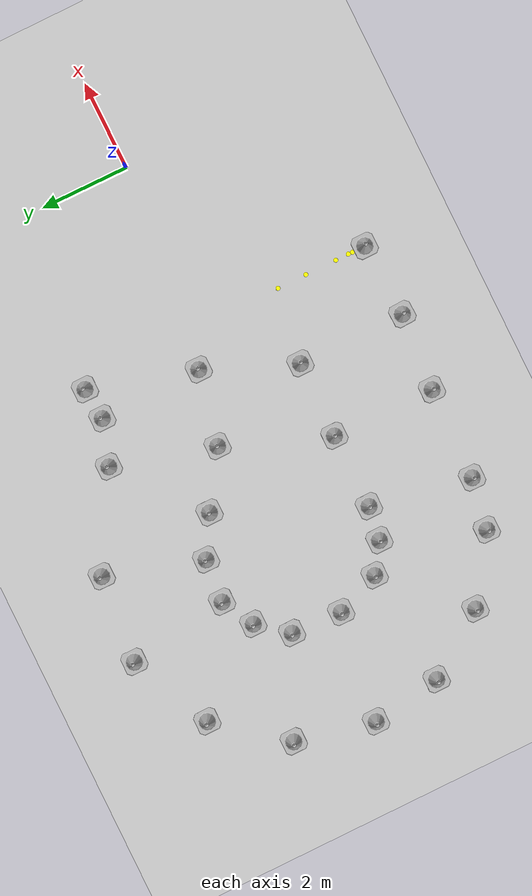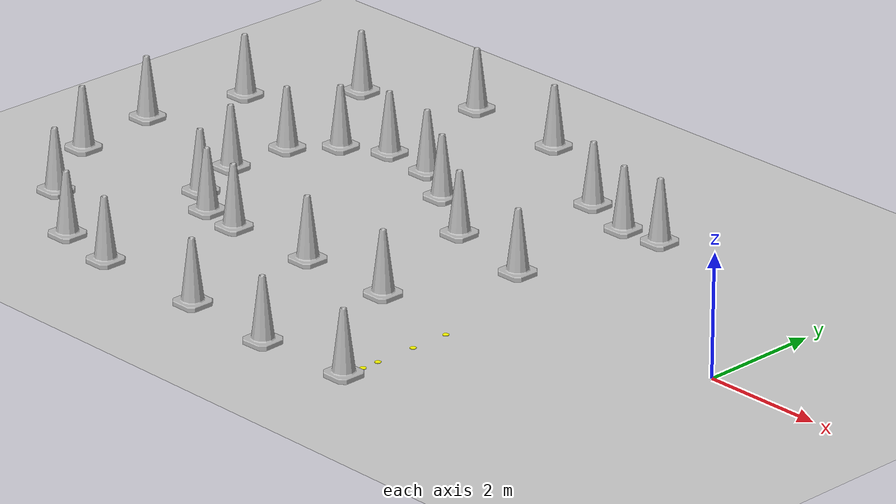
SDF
<sdf version="1.6">
 <world name="default">
  <model name="ground_plane">
   <static>1</static>
   <link name="link">
    <collision name="collision">
     <geometry><plane><normal>0 0 1</normal><size>100 100</size></plane></geometry>
     <surface><friction><ode><mu>100</mu><mu2>50</mu2></ode></friction></surface>
    </collision>
    <visual name="visual">
     <cast_shadows>0</cast_shadows>
     <geometry><plane><normal>0 0 1</normal><size>100 100</size></plane></geometry>
     <material>
      <script><uri>file://media/materials/scripts/gazebo.material</uri><name>Gazebo/Grey</name></script>
     </material>
    </visual>
   </link>
  </model>
  <model name="red_model_8">
   <link name="link">
    <collision name="collision">
     <geometry>
      <mesh><scale>10 10 10</scale><uri>model://construction_cone_red/meshes/construction_cone.dae</uri></mesh>
     </geometry>
    </collision>
    <visual name="visual">
     <geometry>
      <mesh><scale>10 10 10</scale><uri>model://construction_cone_red/meshes/construction_cone.dae</uri></mesh>
     </geometry>
    </visual>
    <inertial>
     <inertia><ixx>1</ixx><ixy>0</ixy><ixz>0</ixz><iyy>1</iyy><iyz>0</iyz><izz>1</izz></inertia>
     <mass>1</mass>
    </inertial>
   </link>
   <pose>-5.4 -1.5 -0 0 -1e-06 0</pose>
  </model>
  <model name="red_model_9">
   <link name="link">
    <collision name="collision">
     <geometry>
      <mesh><scale>10 10 10</scale><uri>model://construction_cone_red/meshes/construction_cone.dae</uri></mesh>
     </geometry>
    </collision>
    <visual name="visual">
     <geometry>
      <mesh><scale>10 10 10</scale><uri>model://construction_cone_red/meshes/construction_cone.dae</uri></mesh>
     </geometry>
    </visual>
    <inertial>
     <inertia><ixx>1</ixx><ixy>0</ixy><ixz>0</ixz><iyy>1</iyy><iyz>0</iyz><izz>1</izz></inertia>
     <mass>1</mass>
    </inertial>
   </link>
   <pose>-7.11 -1.47 -0 0 -0 0</pose>
  </model>
  <model name="red_model_10">
   <link name="link">
    <collision name="collision">
     <geometry>
      <mesh><scale>10 10 10</scale><uri>model://construction_cone_red/meshes/construction_cone.dae</uri></mesh>
     </geometry>
    </collision>
    <visual name="visual">
     <geometry>
      <mesh><scale>10 10 10</scale><uri>model://construction_cone_red/meshes/construction_cone.dae</uri></mesh>
     </geometry>
    </visual>
    <inertial>
     <inertia><ixx>1</ixx><ixy>0</ixy><ixz>0</ixz><iyy>1</iyy><iyz>0</iyz><izz>1</izz></inertia>
     <mass>1</mass>
    </inertial>
   </link>
   <pose>-8.79 -1.47 -9e-06 0 -0 0</pose>
  </model>
  <model name="red_model_11">
   <link name="link">
    <collision name="collision">
     <geometry>
      <mesh><scale>10 10 10</scale><uri>model://construction_cone_red/meshes/construction_cone.dae</uri></mesh>
     </geometry>
    </collision>
    <visual name="visual">
     <geometry>
      <mesh><scale>10 10 10</scale><uri>model://construction_cone_red/meshes/construction_cone.dae</uri></mesh>
     </geometry>
    </visual>
    <inertial>
     <inertia><ixx>1</ixx><ixy>0</ixy><ixz>0</ixz><iyy>1</iyy><iyz>0</iyz><izz>1</izz></inertia>
     <mass>1</mass>
    </inertial>
   </link>
   <pose>-9.54 -1.35 -0 0 -0 0</pose>
  </model>
  <model name="red_model_12">
   <link name="link">
    <collision name="collision">
     <geometry>
      <mesh><scale>10 10 10</scale><uri>model://construction_cone_red/meshes/construction_cone.dae</uri></mesh>
     </geometry>
    </collision>
    <visual name="visual">
     <geometry>
      <mesh><scale>10 10 10</scale><uri>model://construction_cone_red/meshes/construction_cone.dae</uri></mesh>
     </geometry>
    </visual>
    <inertial>
     <inertia><ixx>1</ixx><ixy>0</ixy><ixz>0</ixz><iyy>1</iyy><iyz>0</iyz><izz>1</izz></inertia>
     <mass>1</mass>
    </inertial>
   </link>
   <pose>-10.17 -0.93 -0 0 -1e-06 0</pose>
  </model>
  <model name="red_model_14">
   <link name="link">
    <collision name="collision">
     <geometry>
      <mesh><scale>10 10 10</scale><uri>model://construction_cone_red/meshes/construction_cone.dae</uri></mesh>
     </geometry>
    </collision>
    <visual name="visual">
     <geometry>
      <mesh><scale>10 10 10</scale><uri>model://construction_cone_red/meshes/construction_cone.dae</uri></mesh>
     </geometry>
    </visual>
    <inertial>
     <inertia><ixx>1</ixx><ixy>0</ixy><ixz>0</ixz><iyy>1</iyy><iyz>0</iyz><izz>1</izz></inertia>
     <mass>1</mass>
    </inertial>
   </link>
   <pose>-10.56 0.06 -0 0 -1e-06 0</pose>
  </model>
  <model name="red_model_15">
   <link name="link">
    <collision name="collision">
     <geometry>
      <mesh><scale>10 10 10</scale><uri>model://construction_cone_red/meshes/construction_cone.dae</uri></mesh>
     </geometry>
    </collision>
    <visual name="visual">
     <geometry>
      <mesh><scale>10 10 10</scale><uri>model://construction_cone_red/meshes/construction_cone.dae</uri></mesh>
     </geometry>
    </visual>
    <inertial>
     <inertia><ixx>1</ixx><ixy>0</ixy><ixz>0</ixz><iyy>1</iyy><iyz>0</iyz><izz>1</izz></inertia>
     <mass>1</mass>
    </inertial>
   </link>
   <pose>-4.56 0.51 -0 0 -0 0</pose>
  </model>
  <model name="red_model_19">
   <link name="link">
    <collision name="collision">
     <geometry>
      <mesh><scale>10 10 10</scale><uri>model://construction_cone_red/meshes/construction_cone.dae</uri></mesh>
     </geometry>
    </collision>
    <visual name="visual">
     <geometry>
      <mesh><scale>10 10 10</scale><uri>model://construction_cone_red/meshes/construction_cone.dae</uri></mesh>
     </geometry>
    </visual>
    <inertial>
     <inertia><ixx>1</ixx><ixy>0</ixy><ixz>0</ixz><iyy>1</iyy><iyz>0</iyz><izz>1</izz></inertia>
     <mass>1</mass>
    </inertial>
   </link>
   <pose>-6.21 0.87 -0 0 -0 0</pose>
  </model>
  <model name="red_model_20">
   <link name="link">
    <collision name="collision">
     <geometry>
      <mesh><scale>10 10 10</scale><uri>model://construction_cone_red/meshes/construction_cone.dae</uri></mesh>
     </geometry>
    </collision>
    <visual name="visual">
     <geometry>
      <mesh><scale>10 10 10</scale><uri>model://construction_cone_red/meshes/construction_cone.dae</uri></mesh>
     </geometry>
    </visual>
    <inertial>
     <inertia><ixx>1</ixx><ixy>0</ixy><ixz>0</ixz><iyy>1</iyy><iyz>0</iyz><izz>1</izz></inertia>
     <mass>1</mass>
    </inertial>
   </link>
   <pose>-10.5 1.2 -0 0 -0 0</pose>
  </model>
  <model name="red_model_22">
   <link name="link">
    <collision name="collision">
     <geometry>
      <mesh><scale>10 10 10</scale><uri>model://construction_cone_red/meshes/construction_cone.dae</uri></mesh>
     </geometry>
    </collision>
    <visual name="visual">
     <geometry>
      <mesh><scale>10 10 10</scale><uri>model://construction_cone_red/meshes/construction_cone.dae</uri></mesh>
     </geometry>
    </visual>
    <inertial>
     <inertia><ixx>1</ixx><ixy>0</ixy><ixz>0</ixz><iyy>1</iyy><iyz>0</iyz><izz>1</izz></inertia>
     <mass>1</mass>
    </inertial>
   </link>
   <pose>-7.41 1.65 -0 0 -1e-06 0</pose>
  </model>
  <model name="red_model_24">
   <link name="link">
    <collision name="collision">
     <geometry>
      <mesh><scale>10 10 10</scale><uri>model://construction_cone_red/meshes/construction_cone.dae</uri></mesh>
     </geometry>
    </collision>
    <visual name="visual">
     <geometry>
      <mesh><scale>10 10 10</scale><uri>model://construction_cone_red/meshes/construction_cone.dae</uri></mesh>
     </geometry>
    </visual>
    <inertial>
     <inertia><ixx>1</ixx><ixy>0</ixy><ixz>0</ixz><iyy>1</iyy><iyz>0</iyz><izz>1</izz></inertia>
     <mass>1</mass>
    </inertial>
   </link>
   <pose>-9.96 1.86 -0 0 -1e-06 0</pose>
  </model>
  <model name="red_model_28">
   <link name="link">
    <collision name="collision">
     <geometry>
      <mesh><scale>10 10 10</scale><uri>model://construction_cone_red/meshes/construction_cone.dae</uri></mesh>
     </geometry>
    </collision>
    <visual name="visual">
     <geometry>
      <mesh><scale>10 10 10</scale><uri>model://construction_cone_red/meshes/construction_cone.dae</uri></mesh>
     </geometry>
    </visual>
    <inertial>
     <inertia><ixx>1</ixx><ixy>0</ixy><ixz>0</ixz><iyy>1</iyy><iyz>0</iyz><izz>1</izz></inertia>
     <mass>1</mass>
    </inertial>
   </link>
   <pose>-8.28 2.16 -0 0 -1e-06 0</pose>
  </model>
  <model name="red_model_29">
   <link name="link">
    <collision name="collision">
     <geometry>
      <mesh><scale>10 10 10</scale><uri>model://construction_cone_red/meshes/construction_cone.dae</uri></mesh>
     </geometry>
    </collision>
    <visual name="visual">
     <geometry>
      <mesh><scale>10 10 10</scale><uri>model://construction_cone_red/meshes/construction_cone.dae</uri></mesh>
     </geometry>
    </visual>
    <inertial>
     <inertia><ixx>1</ixx><ixy>0</ixy><ixz>0</ixz><iyy>1</iyy><iyz>0</iyz><izz>1</izz></inertia>
     <mass>1</mass>
    </inertial>
   </link>
   <pose>-9.24 2.25 -0 0 -0 0</pose>
  </model>
  <model name="blue_model_2">
   <link name="link">
    <collision name="collision">
     <geometry>
      <mesh><scale>10 10 10</scale><uri>model://construction_cone_blue/meshes/construction_cone.dae</uri></mesh>
     </geometry>
    </collision>
    <visual name="visual">
     <geometry>
      <mesh><scale>10 10 10</scale><uri>model://construction_cone_blue/meshes/construction_cone.dae</uri></mesh>
     </geometry>
    </visual>
    <inertial>
     <inertia><ixx>1</ixx><ixy>0</ixy><ixz>0</ixz><iyy>1</iyy><iyz>0</iyz><izz>1</izz></inertia>
     <mass>1</mass>
    </inertial>
   </link>
   <pose>-3.74995 -3.84019 0.004992 -0 -1e-06 -0.00015</pose>
  </model>
  <model name="blue_model_5">
   <link name="link">
    <collision name="collision">
     <geometry>
      <mesh><scale>10 10 10</scale><uri>model://construction_cone_blue/meshes/construction_cone.dae</uri></mesh>
     </geometry>
    </collision>
    <visual name="visual">
     <geometry>
      <mesh><scale>10 10 10</scale><uri>model://construction_cone_blue/meshes/construction_cone.dae</uri></mesh>
     </geometry>
    </visual>
    <inertial>
     <inertia><ixx>1</ixx><ixy>0</ixy><ixz>0</ixz><iyy>1</iyy><iyz>0</iyz><izz>1</izz></inertia>
     <mass>1</mass>
    </inertial>
   </link>
   <pose>-5.41428 -3.92101 -0 0 -1e-06 -3.10196</pose>
  </model>
  <model name="blue_model_6">
   <link name="link">
    <collision name="collision">
     <geometry>
      <mesh><scale>10 10 10</scale><uri>model://construction_cone_blue/meshes/construction_cone.dae</uri></mesh>
     </geometry>
    </collision>
    <visual name="visual">
     <geometry>
      <mesh><scale>10 10 10</scale><uri>model://construction_cone_blue/meshes/construction_cone.dae</uri></mesh>
     </geometry>
    </visual>
    <inertial>
     <inertia><ixx>1</ixx><ixy>0</ixy><ixz>0</ixz><iyy>1</iyy><iyz>0</iyz><izz>1</izz></inertia>
     <mass>1</mass>
    </inertial>
   </link>
   <pose>-7.14 -3.78 -0 0 -1e-06 0</pose>
  </model>
  <model name="blue_model_7">
   <link name="link">
    <collision name="collision">
     <geometry>
      <mesh><scale>10 10 10</scale><uri>model://construction_cone_blue/meshes/construction_cone.dae</uri></mesh>
     </geometry>
    </collision>
    <visual name="visual">
     <geometry>
      <mesh><scale>10 10 10</scale><uri>model://construction_cone_blue/meshes/construction_cone.dae</uri></mesh>
     </geometry>
    </visual>
    <inertial>
     <inertia><ixx>1</ixx><ixy>0</ixy><ixz>0</ixz><iyy>1</iyy><iyz>0</iyz><izz>1</izz></inertia>
     <mass>1</mass>
    </inertial>
   </link>
   <pose>-9.21 -3.72 -0 0 -1e-06 0</pose>
  </model>
  <model name="blue_model_8">
   <link name="link">
    <collision name="collision">
     <geometry>
      <mesh><scale>10 10 10</scale><uri>model://construction_cone_blue/meshes/construction_cone.dae</uri></mesh>
     </geometry>
    </collision>
    <visual name="visual">
     <geometry>
      <mesh><scale>10 10 10</scale><uri>model://construction_cone_blue/meshes/construction_cone.dae</uri></mesh>
     </geometry>
    </visual>
    <inertial>
     <inertia><ixx>1</ixx><ixy>0</ixy><ixz>0</ixz><iyy>1</iyy><iyz>0</iyz><izz>1</izz></inertia>
     <mass>1</mass>
    </inertial>
   </link>
   <pose>-10.35 -3.51 -0 0 -1e-06 0</pose>
  </model>
  <model name="blue_model_11">
   <link name="link">
    <collision name="collision">
     <geometry>
      <mesh><scale>10 10 10</scale><uri>model://construction_cone_blue/meshes/construction_cone.dae</uri></mesh>
     </geometry>
    </collision>
    <visual name="visual">
     <geometry>
      <mesh><scale>10 10 10</scale><uri>model://construction_cone_blue/meshes/construction_cone.dae</uri></mesh>
     </geometry>
    </visual>
    <inertial>
     <inertia><ixx>1</ixx><ixy>0</ixy><ixz>0</ixz><iyy>1</iyy><iyz>0</iyz><izz>1</izz></inertia>
     <mass>1</mass>
    </inertial>
   </link>
   <pose>-11.76 -2.55 -0 0 -1e-06 0</pose>
  </model>
  <model name="blue_model_13">
   <link name="link">
    <collision name="collision">
     <geometry>
      <mesh><scale>10 10 10</scale><uri>model://construction_cone_blue/meshes/construction_cone.dae</uri></mesh>
     </geometry>
    </collision>
    <visual name="visual">
     <geometry>
      <mesh><scale>10 10 10</scale><uri>model://construction_cone_blue/meshes/construction_cone.dae</uri></mesh>
     </geometry>
    </visual>
    <inertial>
     <inertia><ixx>1</ixx><ixy>0</ixy><ixz>0</ixz><iyy>1</iyy><iyz>0</iyz><izz>1</izz></inertia>
     <mass>1</mass>
    </inertial>
   </link>
   <pose>-12.75 -1.14 -0 0 -0 0</pose>
  </model>
  <model name="blue_model_14">
   <link name="link">
    <collision name="collision">
     <geometry>
      <mesh><scale>10 10 10</scale><uri>model://construction_cone_blue/meshes/construction_cone.dae</uri></mesh>
     </geometry>
    </collision>
    <visual name="visual">
     <geometry>
      <mesh><scale>10 10 10</scale><uri>model://construction_cone_blue/meshes/construction_cone.dae</uri></mesh>
     </geometry>
    </visual>
    <inertial>
     <inertia><ixx>1</ixx><ixy>0</ixy><ixz>0</ixz><iyy>1</iyy><iyz>0</iyz><izz>1</izz></inertia>
     <mass>1</mass>
    </inertial>
   </link>
   <pose>-12.99 0.42 -0 0 -1e-06 0</pose>
  </model>
  <model name="blue_model_15">
   <link name="link">
    <collision name="collision">
     <geometry>
      <mesh><scale>10 10 10</scale><uri>model://construction_cone_blue/meshes/construction_cone.dae</uri></mesh>
     </geometry>
    </collision>
    <visual name="visual">
     <geometry>
      <mesh><scale>10 10 10</scale><uri>model://construction_cone_blue/meshes/construction_cone.dae</uri></mesh>
     </geometry>
    </visual>
    <inertial>
     <inertia><ixx>1</ixx><ixy>0</ixy><ixz>0</ixz><iyy>1</iyy><iyz>0</iyz><izz>1</izz></inertia>
     <mass>1</mass>
    </inertial>
   </link>
   <pose>-12.6 2.19 -0 0 -1e-06 0</pose>
  </model>
  <model name="blue_model_17">
   <link name="link">
    <collision name="collision">
     <geometry>
      <mesh><scale>10 10 10</scale><uri>model://construction_cone_blue/meshes/construction_cone.dae</uri></mesh>
     </geometry>
    </collision>
    <visual name="visual">
     <geometry>
      <mesh><scale>10 10 10</scale><uri>model://construction_cone_blue/meshes/construction_cone.dae</uri></mesh>
     </geometry>
    </visual>
    <inertial>
     <inertia><ixx>1</ixx><ixy>0</ixy><ixz>0</ixz><iyy>1</iyy><iyz>0</iyz><izz>1</izz></inertia>
     <mass>1</mass>
    </inertial>
   </link>
   <pose>-4.59 2.82 -0 0 -0 0</pose>
  </model>
  <model name="blue_model_19">
   <link name="link">
    <collision name="collision">
     <geometry>
      <mesh><scale>10 10 10</scale><uri>model://construction_cone_blue/meshes/construction_cone.dae</uri></mesh>
     </geometry>
    </collision>
    <visual name="visual">
     <geometry>
      <mesh><scale>10 10 10</scale><uri>model://construction_cone_blue/meshes/construction_cone.dae</uri></mesh>
     </geometry>
    </visual>
    <inertial>
     <inertia><ixx>1</ixx><ixy>0</ixy><ixz>0</ixz><iyy>1</iyy><iyz>0</iyz><izz>1</izz></inertia>
     <mass>1</mass>
    </inertial>
   </link>
   <pose>-3.87 2.88 -0 0 -1e-06 0</pose>
  </model>
  <model name="blue_model_22">
   <link name="link">
    <collision name="collision">
     <geometry>
      <mesh><scale>10 10 10</scale><uri>model://construction_cone_blue/meshes/construction_cone.dae</uri></mesh>
     </geometry>
    </collision>
    <visual name="visual">
     <geometry>
      <mesh><scale>10 10 10</scale><uri>model://construction_cone_blue/meshes/construction_cone.dae</uri></mesh>
     </geometry>
    </visual>
    <inertial>
     <inertia><ixx>1</ixx><ixy>0</ixy><ixz>0</ixz><iyy>1</iyy><iyz>0</iyz><izz>1</izz></inertia>
     <mass>1</mass>
    </inertial>
   </link>
   <pose>-5.58 3.15 -0 0 -0 0</pose>
  </model>
  <model name="blue_model_24">
   <link name="link">
    <collision name="collision">
     <geometry>
      <mesh><scale>10 10 10</scale><uri>model://construction_cone_blue/meshes/construction_cone.dae</uri></mesh>
     </geometry>
    </collision>
    <visual name="visual">
     <geometry>
      <mesh><scale>10 10 10</scale><uri>model://construction_cone_blue/meshes/construction_cone.dae</uri></mesh>
     </geometry>
    </visual>
    <inertial>
     <inertia><ixx>1</ixx><ixy>0</ixy><ixz>0</ixz><iyy>1</iyy><iyz>0</iyz><izz>1</izz></inertia>
     <mass>1</mass>
    </inertial>
   </link>
   <pose>-11.4 3.66 -0 0 -1e-06 0</pose>
  </model>
  <model name="blue_model_28">
   <link name="link">
    <collision name="collision">
     <geometry>
      <mesh><scale>10 10 10</scale><uri>model://construction_cone_blue/meshes/construction_cone.dae</uri></mesh>
     </geometry>
    </collision>
    <visual name="visual">
     <geometry>
      <mesh><scale>10 10 10</scale><uri>model://construction_cone_blue/meshes/construction_cone.dae</uri></mesh>
     </geometry>
    </visual>
    <inertial>
     <inertia><ixx>1</ixx><ixy>0</ixy><ixz>0</ixz><iyy>1</iyy><iyz>0</iyz><izz>1</izz></inertia>
     <mass>1</mass>
    </inertial>
   </link>
   <pose>-7.62 4.32 -0 0 -1e-06 0</pose>
  </model>
  <model name="blue_model_29">
   <link name="link">
    <collision name="collision">
     <geometry>
      <mesh><scale>10 10 10</scale><uri>model://construction_cone_blue/meshes/construction_cone.dae</uri></mesh>
     </geometry>
    </collision>
    <visual name="visual">
     <geometry>
      <mesh><scale>10 10 10</scale><uri>model://construction_cone_blue/meshes/construction_cone.dae</uri></mesh>
     </geometry>
    </visual>
    <inertial>
     <inertia><ixx>1</ixx><ixy>0</ixy><ixz>0</ixz><iyy>1</iyy><iyz>0</iyz><izz>1</izz></inertia>
     <mass>1</mass>
    </inertial>
   </link>
   <pose>-9.57 4.5 -0 0 -0 0</pose>
  </model>
  <model name="yellow_disc">
   <static>1</static>
   <link name="link">
    <visual name="visual">
     <geometry><cylinder><radius>0.05</radius><length>0.01</length></cylinder></geometry>
     <material><ambient>1 1 0 1</ambient><diffuse>1 1 0 1</diffuse><specular>0.5 0.5 0.5 1</specular></material>
    </visual>
    <collision name="collision">
     <geometry><cylinder><radius>0.5</radius><length>0.01</length></cylinder></geometry>
    </collision>
   </link>
   <pose>-3.75631 -3.54637 0 0 -0 0</pose>
  </model>
  <model name="yellow_disc_clone">
   <static>1</static>
   <link name="link">
    <visual name="visual">
     <geometry><cylinder><radius>0.05</radius><length>0.01</length></cylinder></geometry>
     <material><ambient>1 1 0 1</ambient><diffuse>1 1 0 1</diffuse><specular>0.5 0.5 0.5 1</specular></material>
    </visual>
    <collision name="collision">
     <geometry><cylinder><radius>0.5</radius><length>0.01</length></cylinder></geometry>
    </collision>
   </link>
   <pose>-3.75256 -3.45133 0 0 -0 0</pose>
  </model>
  <model name="yellow_disc_clone_2">
   <static>1</static>
   <link name="link">
    <visual name="visual">
     <geometry><cylinder><radius>0.05</radius><length>0.01</length></cylinder></geometry>
     <material><ambient>1 1 0 1</ambient><diffuse>1 1 0 1</diffuse><specular>0.5 0.5 0.5 1</specular></material>
    </visual>
    <collision name="collision">
     <geometry><cylinder><radius>0.5</radius><length>0.01</length></cylinder></geometry>
    </collision>
   </link>
   <pose>-3.75095 -3.15443 0 0 -0 0</pose>
  </model>
  <model name="yellow_disc_clone_9">
   <static>1</static>
   <link name="link">
    <visual name="visual">
     <geometry><cylinder><radius>0.05</radius><length>0.01</length></cylinder></geometry>
     <material><ambient>1 1 0 1</ambient><diffuse>1 1 0 1</diffuse><specular>0.5 0.5 0.5 1</specular></material>
    </visual>
    <collision name="collision">
     <geometry><cylinder><radius>0.5</radius><length>0.01</length></cylinder></geometry>
    </collision>
   </link>
   <pose>-3.74897 -2.44428 0 0 -0 0</pose>
  </model>
  <model name="yellow_disc_clone_16">
   <static>1</static>
   <link name="link">
    <visual name="visual">
     <geometry><cylinder><radius>0.05</radius><length>0.01</length></cylinder></geometry>
     <material><ambient>1 1 0 1</ambient><diffuse>1 1 0 1</diffuse><specular>0.5 0.5 0.5 1</specular></material>
    </visual>
    <collision name="collision">
     <geometry><cylinder><radius>0.5</radius><length>0.01</length></cylinder></geometry>
    </collision>
   </link>
   <pose>-3.74892 -1.7769 0 0 -0 0</pose>
  </model>
 </world>
</sdf>
